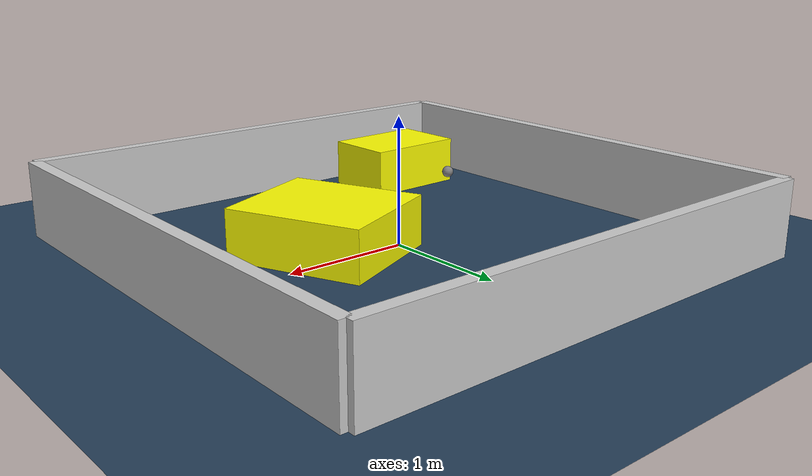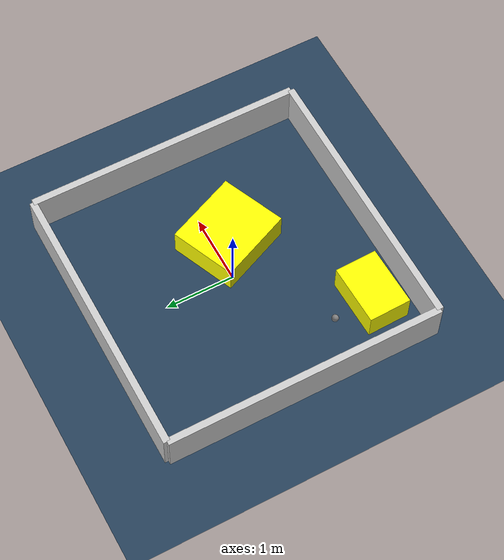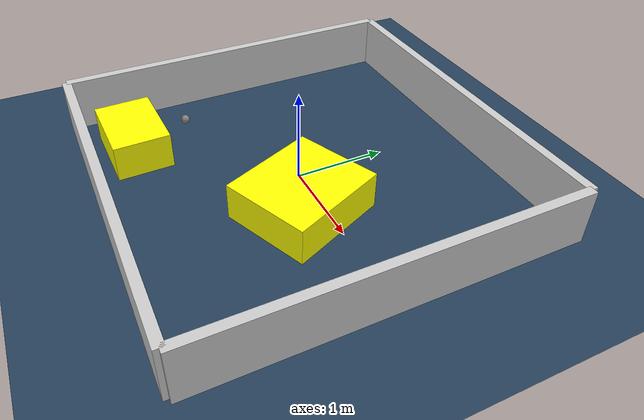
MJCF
<?xml version="1.0" ?>
<mujoco model="generated_environment">
  <option timestep="0.01" integrator="RK4" cone="elliptic"/>
  <default>
    <geom density="1"/>
  </default>
  <asset>
    <texture builtin="gradient" height="3072" rgb1="0.3 0.5 0.7" rgb2="0 0 0" type="skybox" width="512"/>
    <texture builtin="checker" height="300" mark="edge" markrgb="0.8 0.8 0.8" name="groundplane" rgb1="0.2 0.3 0.4" rgb2="0.1 0.2 0.3" type="2d" width="300"/>
    <material name="groundplane" reflectance="0.2" texrepeat="5 5" texture="groundplane" texuniform="true"/>
    <material name="robot" rgba="0.0 1.0 0.0 1"/>
  </asset>
  <worldbody>
    <light dir="0 0 -1" directional="true" pos="0 0 1.5"/>
    <geom condim="4" friction="1.0 0.005 0.001" material="groundplane" name="floor" size="0 0 0.05" type="plane"/>
    <body name="walls">
      <geom name="wall_1" condim="4" pos="-2.0 0.0 0.3" rgba="0.800000011920929 0.800000011920929 0.800000011920929 1.0" size="0.05 2.0 0.3" type="box"/>
      <geom name="wall_2" condim="4" pos="2.0 0.0 0.3" rgba="0.800000011920929 0.800000011920929 0.800000011920929 1.0" size="0.05 2.0 0.3" type="box"/>
      <geom name="wall_3" condim="4" pos="0.0 -2.0 0.3" rgba="0.800000011920929 0.800000011920929 0.800000011920929 1.0" size="2.0 0.05 0.3" type="box"/>
      <geom name="wall_4" condim="4" pos="0.0 2.0 0.3" rgba="0.800000011920929 0.800000011920929 0.800000011920929 1.0" size="2.0 0.05 0.3" type="box"/>
    </body>
    <body name="robot">
      <joint name="joint_x" type="slide" pos="0 0 0" axis="1 0 0"/>
      <joint name="joint_y" type="slide" pos="0 0 0" axis="0 1 0"/>
      <geom name="robot" type="sphere" pos="-1.2928125132003934 -0.8478156786892932 0.2" size="0.05" mass="5." friction="1.0 0.005 0.0001" condim="4"/>
      <site name="sensor_ball"/>
    </body>
    <body name="obstacle_1_movable">
      <geom name="obstacle_1_movable" condim="4" pos="0.5285284930422611 -0.21170920371744217 0.2" euler="0 0 23.170812207913997" friction="1.0 0.005 0.001" rgba="1 1 0 1" size="0.48781968708744455 0.5535366689088936 0.2" type="box" mass="0.1"/>
      <joint type="free"/>
    </body>
    <body name="obstacle_2_movable">
      <geom name="obstacle_2_movable" condim="4" pos="-1.1883168874407788 -1.4743744757414299 0.2" euler="0 0 181.53609356547076" friction="1.0 0.005 0.001" rgba="1 1 0 1" size="0.43848545944210815 0.3070178718333024 0.2" type="box" mass="0.1"/>
      <joint type="free"/>
    </body>
  </worldbody>
  <actuator>
    <motor name="actuator_x" joint="joint_x" gear="1" ctrlrange="-1 1"/>
    <motor name="actuator_y" joint="joint_y" gear="1" ctrlrange="-1 1"/>
  </actuator>
</mujoco>
